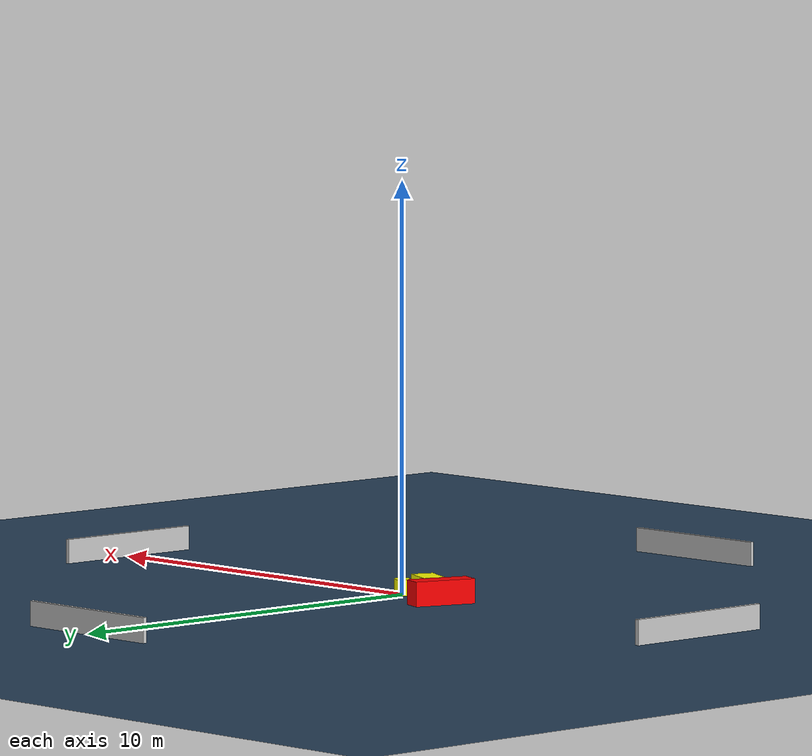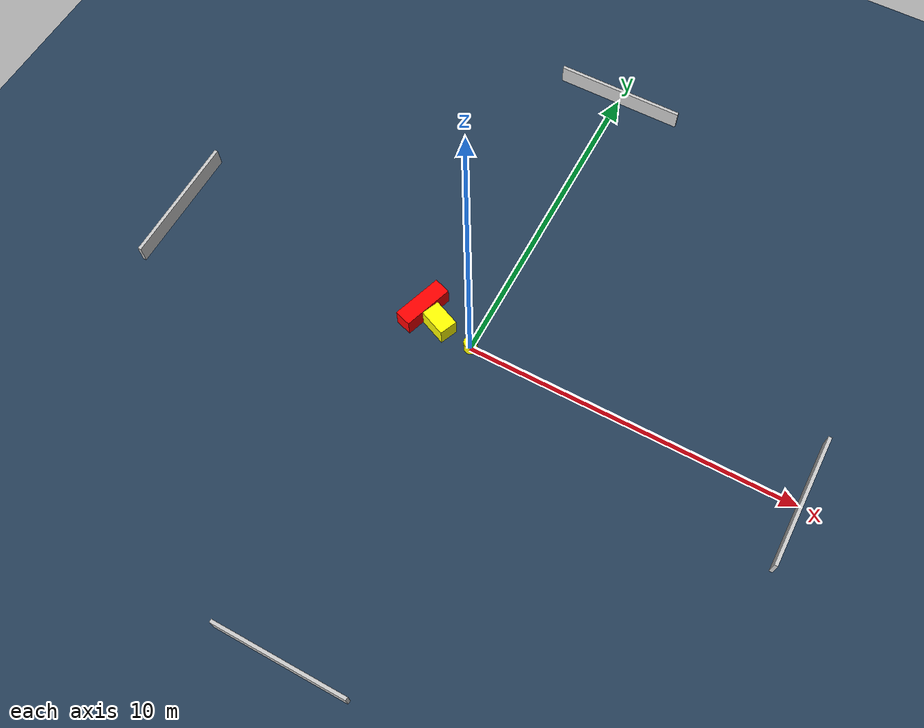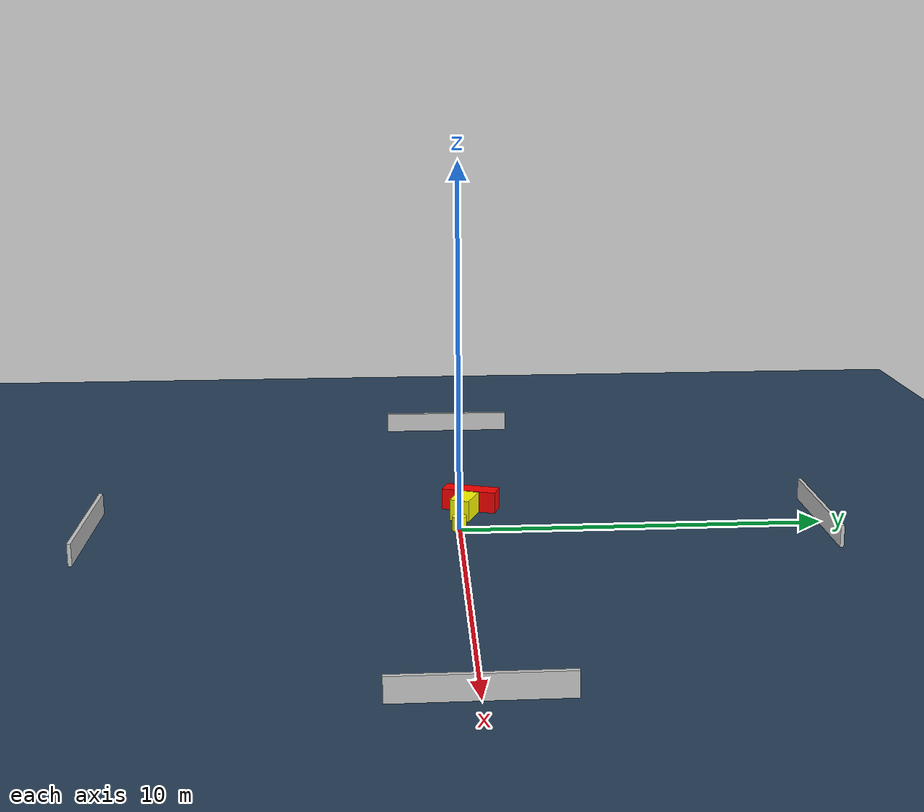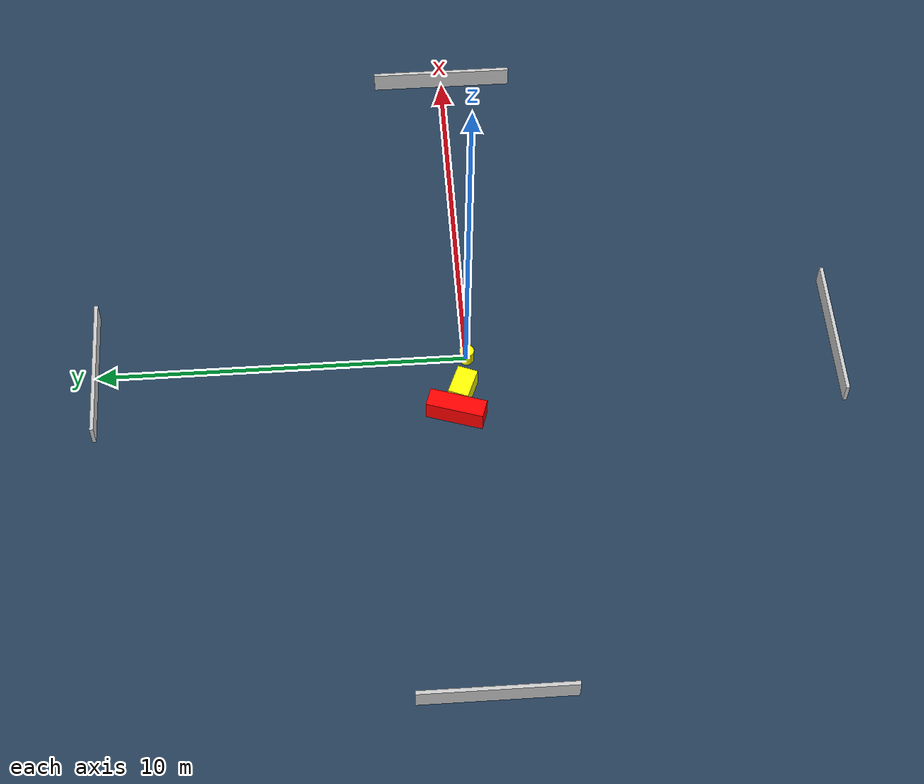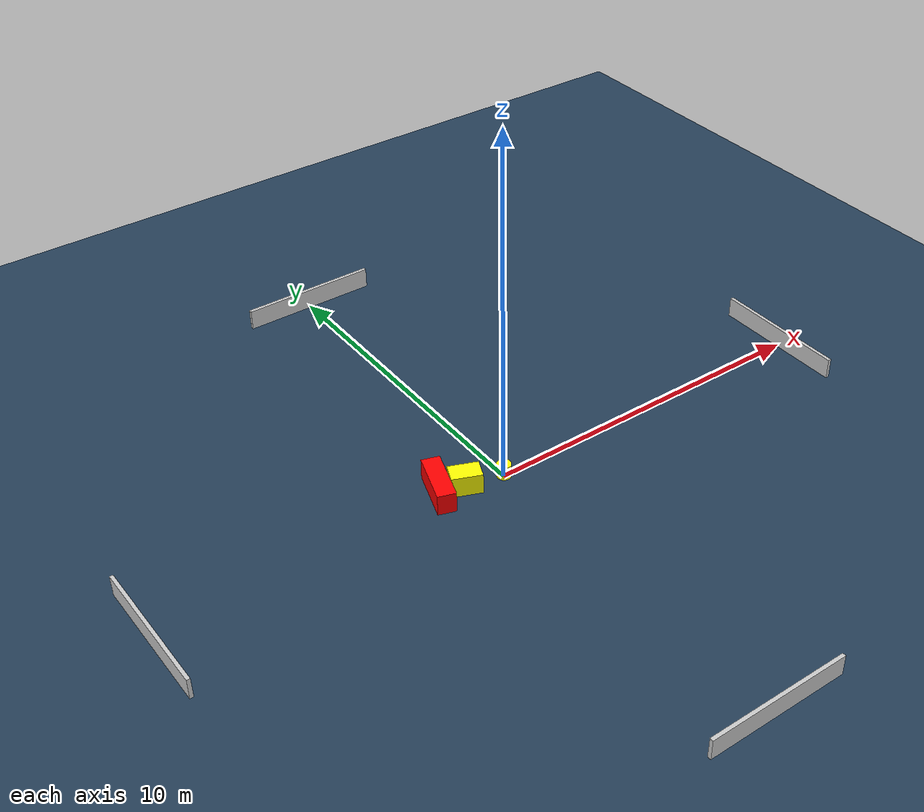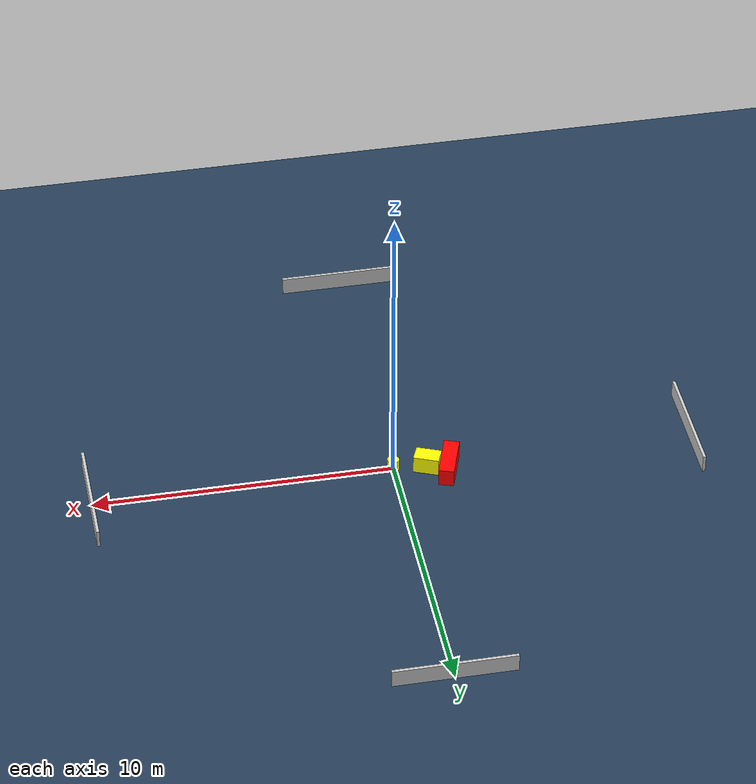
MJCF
<?xml version="1.0" ?>
<mujoco model="generated_environment">
  <option timestep="0.01" integrator="RK4" cone="elliptic"/>
  <default>
    <geom density="1"/>
  </default>
  <asset>
    <texture builtin="gradient" height="3072" name="skybox" rgb1="0.3 0.5 0.7" rgb2="0 0 0" type="skybox" width="512"/>
    <texture builtin="checker" height="300" name="groundplane" rgb1="0.2 0.3 0.4" rgb2="0.1 0.2 0.3" type="2d" width="300"/>
    <material name="groundplane" reflectance="0.2" texrepeat="5 5" texture="groundplane"/>
  </asset>
  <worldbody>
    <light dir="0 0 -1" directional="true" pos="0 0 1.5"/>
    <geom condim="3" friction="0.5 0.005 0.001" material="groundplane" name="floor" pos="0 0 0" size="0 0 0.05" type="plane"/>
    <body name="walls">
      <geom name="wall_1" condim="4" pos="-10.0 0.0 0.3" rgba="0.800000011920929 0.800000011920929 0.800000011920929 1.0" size="0.05 2.0 0.3" type="box"/>
      <geom name="wall_2" condim="4" pos="10.0 0.0 0.3" rgba="0.800000011920929 0.800000011920929 0.800000011920929 1.0" size="0.05 2.0 0.3" type="box"/>
      <geom name="wall_3" condim="4" pos="0.0 -10.0 0.3" rgba="0.800000011920929 0.800000011920929 0.800000011920929 1.0" size="2.0 0.05 0.3" type="box"/>
      <geom name="wall_4" condim="4" pos="0.0 10.0 0.3" rgba="0.800000011920929 0.800000011920929 0.800000011920929 1.0" size="2.0 0.05 0.3" type="box"/>
    </body>
    <body name="robot">
      <joint name="joint_x" type="slide" pos="0 0 0" axis="1 0 0"/>
      <joint name="joint_y" type="slide" pos="0 0 0" axis="0 1 0"/>
      <geom name="robot" type="cylinder" pos="0.0 0.0 0.2" size="0.2 0.2 0.0" mass="5.0" friction="1.0 0.005 0.0001" condim="4" rgba="1.0 1.0 0.0 1.0"/>
    </body>
    <body name="obstacle_1_movable">
      <geom name="obstacle_1_movable" condim="4" pos="-1.107832097390254 0.18283048091186221 0.3" euler="0 0 337.3162502040669" friction="0.0 0.005 0.001" rgba="1.0 1.0 0.0 1.0" size="0.42329277928068076 0.2771133964115888 0.3" type="box" mass="0.1"/>
      <joint type="free"/>
    </body>
    <body name="obstacle_2_static">
      <geom name="obstacle_2_static" condim="4" pos="-1.7821591147065932 0.4014713145817647 0.3" euler="0 0 251.6234181459384" friction="0.0 0.005 0.001" rgba="1.0 0.0 0.0 1.0" size="0.7738312089242314 0.2571615409169177 0.3" type="box"/>
    </body>
  </worldbody>
  <actuator>
    <motor name="actuator_x" joint="joint_x" gear="1" ctrlrange="-1 1"/>
    <motor name="actuator_y" joint="joint_y" gear="1" ctrlrange="-1 1"/>
  </actuator>
</mujoco>
